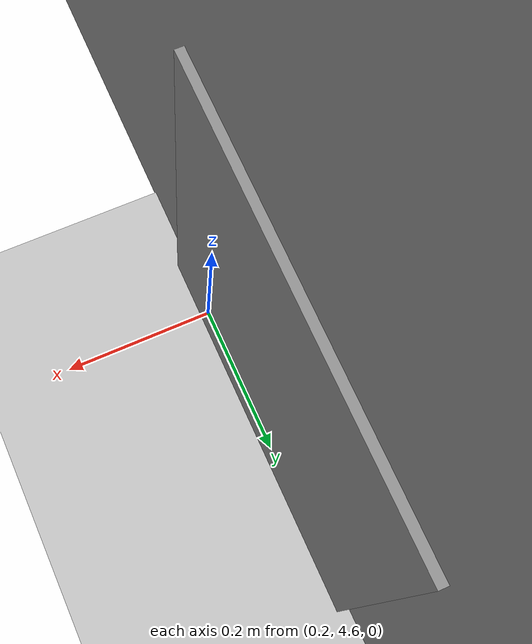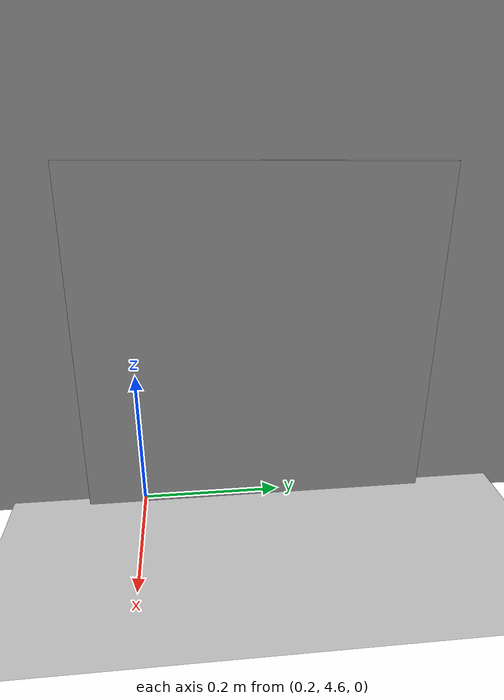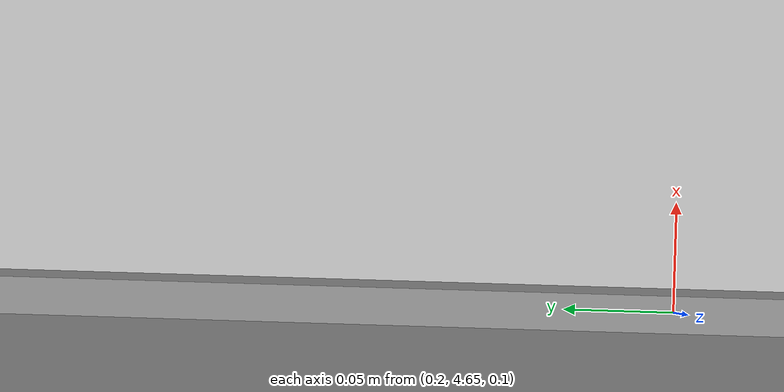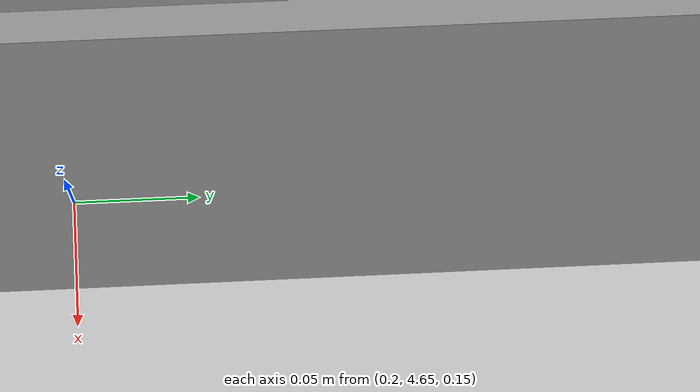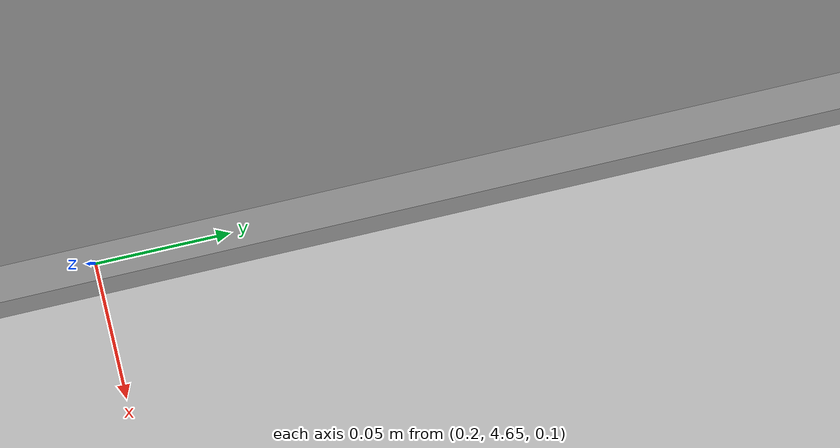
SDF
<sdf version="1.6">
 <world name="default">
  <light name="sun" type="directional">
   <pose>0 0 10 0 -0 0</pose>
   <diffuse>0.8 0.8 0.8 1</diffuse>
   <specular>0.1 0.1 0.1 1</specular>
   <attenuation>
    <range>1000</range>
    <constant>0.9</constant>
    <linear>0.01</linear>
    <quadratic>0.001</quadratic>
   </attenuation>
   <direction>-0.5 0.5 -1</direction>
  </light>
  <model name="ground_plane">
   <static>1</static>
   <link name="link">
    <collision name="collision">
     <geometry><plane><normal>0 0 1</normal><size>100 100</size></plane></geometry>
     <surface><friction><ode><mu>100</mu><mu2>50</mu2></ode></friction></surface>
    </collision>
    <visual name="visual">
     <cast_shadows>0</cast_shadows>
     <geometry><plane><normal>0 0 1</normal><size>100 100</size></plane></geometry>
     <material>
      <script><uri>file://media/materials/scripts/gazebo.material</uri><name>Gazebo/Grey</name></script>
     </material>
    </visual>
   </link>
  </model>
  <gravity>0 0 -9.8</gravity>
  <magnetic_field>6e-06 2.3e-05 -4.2e-05</magnetic_field>
  <atmosphere type="adiabatic"/>
  <physics name="default_physics" default="0" type="ode">
   <max_step_size>0.001</max_step_size>
   <real_time_factor>1</real_time_factor>
   <real_time_update_rate>1000</real_time_update_rate>
  </physics>
  <scene><ambient>0.4 0.4 0.4 1</ambient><background>0.7 0.7 0.7 1</background><shadows>1</shadows></scene>
  <spherical_coordinates>
   <surface_model>EARTH_WGS84</surface_model>
   <latitude_deg>0</latitude_deg>
   <longitude_deg>0</longitude_deg>
   <elevation>0</elevation>
   <heading_deg>0</heading_deg>
  </spherical_coordinates>
  <model name="room">
   <link name="link_3">
    <pose>0.005 1.25 0 0 -0 0</pose>
    <inertial>
     <mass>1</mass>
     <inertia>
      <ixx>0.166667</ixx>
      <ixy>0</ixy>
      <ixz>0</ixz>
      <iyy>0.166667</iyy>
      <iyz>0</iyz>
      <izz>0.166667</izz>
     </inertia>
    </inertial>
    <visual name="visual">
     <geometry>
      <mesh>
       <uri>/home/sandra/.gazebo/models/aruco/ar_tags/model/marker0/meshes/Marker0.dae</uri>
       <scale>1 1 1</scale>
      </mesh>
     </geometry>
     <material>
      <lighting>1</lighting>
      <script><uri>file://media/materials/scripts/gazebo.material</uri><name>Gazebo/Grey</name></script>
      <ambient>0.3 0.3 0.3 1</ambient>
      <diffuse>0.7 0.7 0.7 1</diffuse>
      <specular>0.01 0.01 0.01 1</specular>
      <emissive>0 0 0 1</emissive>
      <shader type="vertex"><normal_map>__default__</normal_map></shader>
     </material>
    </visual>
    <collision name="collision">
     <geometry>
      <mesh>
       <uri>/home/sandra/.gazebo/models/aruco/ar_tags/model/marker0/meshes/Marker0.dae</uri>
       <scale>1 1 1</scale>
      </mesh>
     </geometry>
     <surface>
      <friction>
       <ode><mu>1</mu><mu2>1</mu2><fdir1>0 0 0</fdir1><slip1>0</slip1><slip2>0</slip2></ode>
       <torsional>
        <coefficient>1</coefficient>
        <patch_radius>0</patch_radius>
        <surface_radius>0</surface_radius>
        <use_patch_radius>1</use_patch_radius>
        <ode><slip>0</slip></ode>
       </torsional>
      </friction>
      <bounce><restitution_coefficient>0</restitution_coefficient><threshold>1e+06</threshold></bounce>
      <contact>
       <collide_without_contact>0</collide_without_contact>
       <collide_without_contact_bitmask>1</collide_without_contact_bitmask>
       <collide_bitmask>1</collide_bitmask>
       <ode>
        <soft_cfm>0</soft_cfm>
        <soft_erp>0.2</soft_erp>
        <kp>1e+13</kp>
        <kd>1</kd>
        <max_vel>0.01</max_vel>
        <min_depth>0</min_depth>
       </ode>
       <bullet>
        <split_impulse>1</split_impulse>
        <split_impulse_penetration_threshold>-0.01</split_impulse_penetration_threshold>
        <soft_cfm>0</soft_cfm>
        <soft_erp>0.2</soft_erp>
        <kp>1e+13</kp>
        <kd>1</kd>
       </bullet>
      </contact>
     </surface>
    </collision>
   </link>
   <link name="link_4">
    <pose>-0.005 -1.25 0 0 -0 0</pose>
    <inertial>
     <mass>1</mass>
     <inertia>
      <ixx>0.166667</ixx>
      <ixy>0</ixy>
      <ixz>0</ixz>
      <iyy>0.166667</iyy>
      <iyz>0</iyz>
      <izz>0.166667</izz>
     </inertia>
    </inertial>
    <visual name="visual">
     <geometry>
      <mesh>
       <uri>/home/sandra/mm_ws/src/mobile_manipulator_sim/mm_gazebo/meshes/room100.dae</uri>
       <scale>1 1 1</scale>
      </mesh>
     </geometry>
     <material>
      <lighting>1</lighting>
      <script><uri>file://media/materials/scripts/gazebo.material</uri><name>Gazebo/Grey</name></script>
      <ambient>0.3 0.3 0.3 1</ambient>
      <diffuse>0.7 0.7 0.7 1</diffuse>
      <specular>0.01 0.01 0.01 1</specular>
      <emissive>0 0 0 1</emissive>
      <shader type="vertex"><normal_map>__default__</normal_map></shader>
     </material>
    </visual>
    <collision name="collision">
     <geometry>
      <mesh>
       <uri>/home/sandra/mm_ws/src/mobile_manipulator_sim/mm_gazebo/meshes/room100.dae</uri>
       <scale>1 1 1</scale>
      </mesh>
     </geometry>
     <surface>
      <friction>
       <ode><mu>1</mu><mu2>1</mu2><fdir1>0 0 0</fdir1><slip1>0</slip1><slip2>0</slip2></ode>
       <torsional>
        <coefficient>1</coefficient>
        <patch_radius>0</patch_radius>
        <surface_radius>0</surface_radius>
        <use_patch_radius>1</use_patch_radius>
        <ode><slip>0</slip></ode>
       </torsional>
      </friction>
      <bounce><restitution_coefficient>0</restitution_coefficient><threshold>1e+06</threshold></bounce>
      <contact>
       <collide_without_contact>0</collide_without_contact>
       <collide_without_contact_bitmask>1</collide_without_contact_bitmask>
       <collide_bitmask>1</collide_bitmask>
       <ode>
        <soft_cfm>0</soft_cfm>
        <soft_erp>0.2</soft_erp>
        <kp>1e+13</kp>
        <kd>1</kd>
        <max_vel>0.01</max_vel>
        <min_depth>0</min_depth>
       </ode>
       <bullet>
        <split_impulse>1</split_impulse>
        <split_impulse_penetration_threshold>-0.01</split_impulse_penetration_threshold>
        <soft_cfm>0</soft_cfm>
        <soft_erp>0.2</soft_erp>
        <kp>1e+13</kp>
        <kd>1</kd>
       </bullet>
      </contact>
     </surface>
    </collision>
   </link>
   <static>0</static>
   <pose>0.20188 3.51876 2e-06 -0.012719 0.000881 0.001323</pose>
  </model>
 </world>
</sdf>
